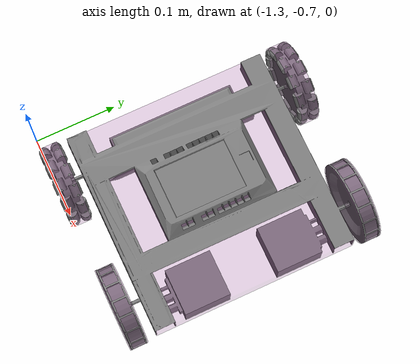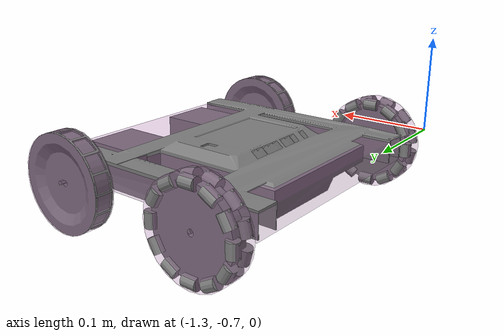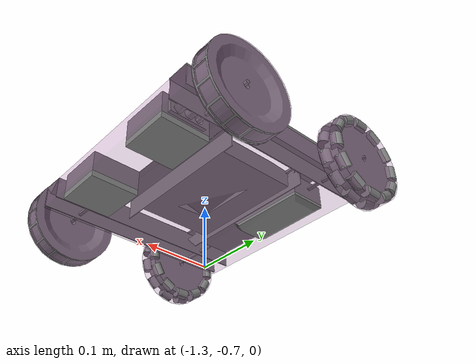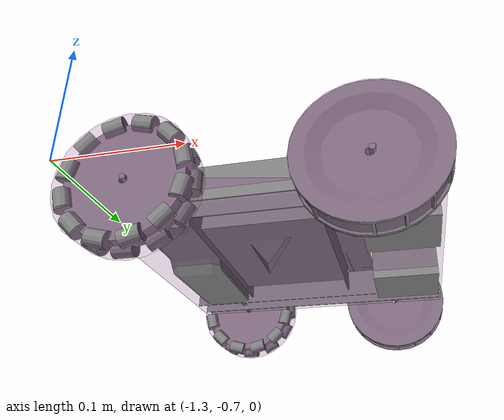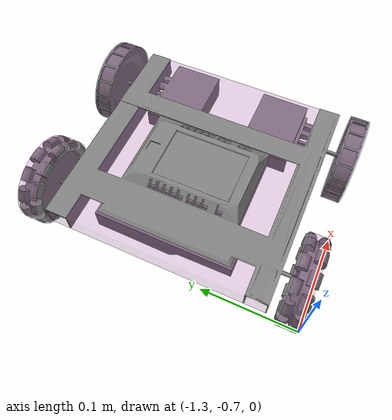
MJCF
<mujoco>
    <compiler angle="radian"></compiler>
    <default>
        <default class="smartMotor">
            <velocity ctrlrange="-10 10" forcerange="-2.1 2.1" ctrllimited="true" forcelimited="true" kv="5"/>
            <joint armature="0.0067"/>
        </default>

        <default class="touch">
            <geom rgba="0.5 0 0 0.1" type="box"/>
            <site rgba="0.5 0 0 0.0" type="box"/>
        </default>
    </default>

    <visual>
        <global offwidth="1" offheight="1"/>
    </visual>

    <actuator>
        <velocity name="fl_motor" joint="FL_joint" class="smartMotor"/>
        <velocity name="fr_motor" joint="FR_joint" class="smartMotor"/>
    </actuator>

    <sensor>
        <framepos name="xyz" objtype="body" objname="base_link"/>
        <framequat name="quat" objtype="body" objname="base_link"/>
    </sensor>

    <contact>
        <pair name="RL_contact" geom2="RL_cylinder" geom1="floor" friction="0.5 0.5 0.005 0.0001 0.0001"/>
        <pair name="RR_contact" geom2="RR_cylinder" geom1="floor" friction="0.5 0.5 0.005 0.0001 0.0001"/>
    </contact>

    <worldbody>
        <body name="base_link" pos="-1.11 -0.54 0" quat="1 0 0 0">
            <inertial mass="1.388" pos="-0.058 0 -0.015" fullinertia="0.007613347 0.0138756 0.0197 -0.00027024 0.001325905 -0.0000672432"></inertial>
            <geom pos="-0.05 0 -0.015" euler="0 0 0" type="box" size="0.127 0.127 0.0127" rgba="0.5 0.1 0.5 0.1"></geom>
            <geom pos="0 0 0" euler="0 0 0" type="mesh" mesh="base_link" contype="0" conaffinity="0"></geom>
            <joint type="free"></joint>

            <body name="FL" pos="0.03 0.15 -0.02" quat="0.7071054825112363 0.7071080798594735 0 0">
                <inertial mass="0.09" pos="0 0 0" fullinertia="0.0001015 0.0001015 0.000183617 0 0 0"></inertial>
                <geom pos="0 0 0" euler="0 0 0" type="cylinder" size="0.0508 0.01115" rgba="0.5 0.1 0.5 0.1"></geom>
                <geom pos="0 0 0" euler="0 0 0" type="mesh" mesh="traction" contype="0" conaffinity="0"></geom>
                <joint name="FL_joint" type="hinge" axis="0 0 1" pos="0 0 0" class="smartMotor"></joint>
            </body>
            <body name="FR" pos="0.03 -0.15 -0.02" quat="0.7071054825112363 0.7071080798594735 0 0">
                <inertial mass="0.09" pos="0 0 0" fullinertia="0.0001015 0.0001015 0.000183617 0 0 0"></inertial>
                <geom pos="0 0 0" euler="0 0 0" type="cylinder" size="0.0508 0.01115" rgba="0.5 0.1 0.5 0.1"></geom>
                <geom pos="0 0 0" euler="0 0 0" type="mesh" mesh="traction" contype="0" conaffinity="0"></geom>
                <joint name="FR_joint" type="hinge" axis="0 0 1" pos="0 0 0" class="smartMotor"></joint>
            </body>
            <body name="RL" pos="-0.133305 0.15 -0.020691" quat="0.7071054825112363 0.7071080798594735 0 0">
                <inertial mass="0.10188" pos="0 0 0" fullinertia="0.0000974149 0.0000974149 0.000183617 0 0 0"></inertial>
                <geom name="RL_cylinder" pos="0 0 0" euler="0 0 0" type="cylinder" size="0.0508 0.01115" rgba="0.5 0.1 0.5 0.1"></geom>
                <geom pos="0 0 0" euler="0 0 0" type="mesh" mesh="omni" contype="0" conaffinity="0"></geom>
                <joint name="RL_joint" type="hinge" axis="0 0 1" pos="0 0 0"></joint>
            </body>
            <body name="RR" pos="-0.133305 -0.15 -0.020691" quat="0.7071054825112363 0.7071080798594735 0 0">
                <inertial mass="0.10188" pos="0 0 0" fullinertia="0.0000974149 0.0000974149 0.000183617 0 0 0"></inertial>
                <geom name="RR_cylinder" pos="0 0 0" euler="0 0 0" type="cylinder" size="0.0508 0.01115" rgba="0.5 0.1 0.5 0.1"></geom>
                <geom pos="0 0 0" euler="0 0 0" type="mesh" mesh="omni" contype="0" conaffinity="0"></geom>
                <joint name="RR_joint" type="hinge" axis="0 0 1" pos="0 0 0"></joint>
            </body>
        </body>
    </worldbody>

    <asset>
        <mesh name="base_link" file="base_link.stl"></mesh>
        <mesh name="traction" file="traction.stl"></mesh>
        <mesh name="omni" file="omni.stl"></mesh>
    </asset>
</mujoco>
